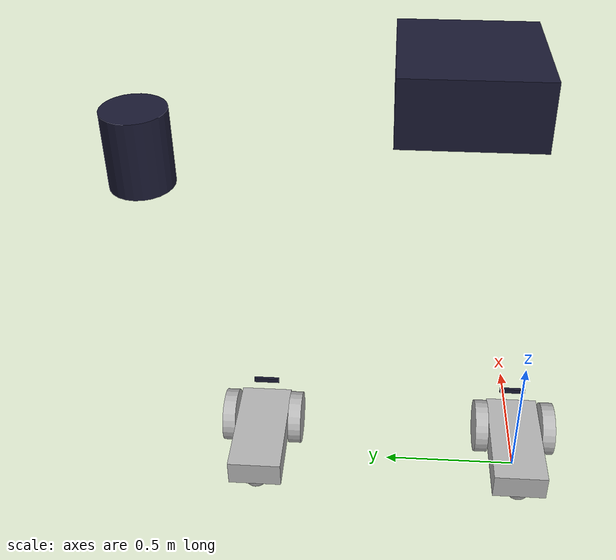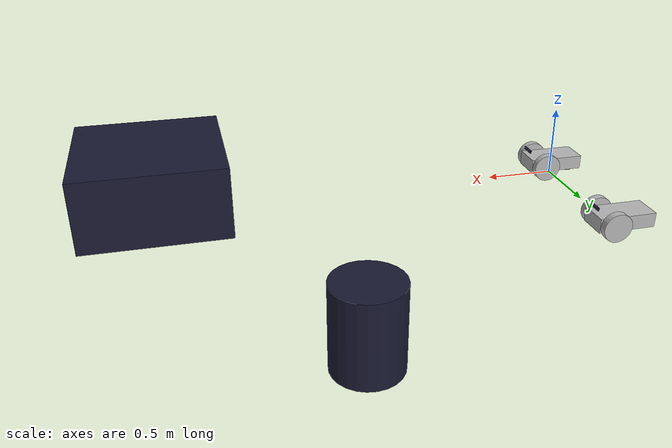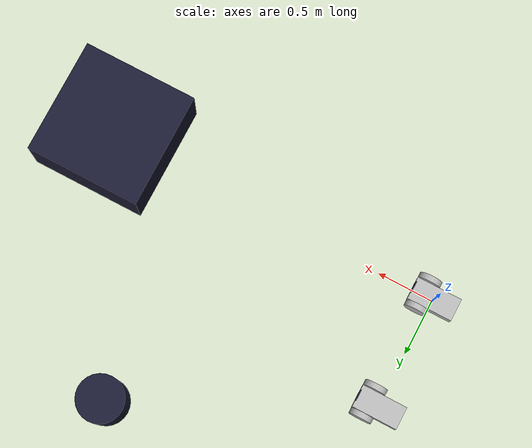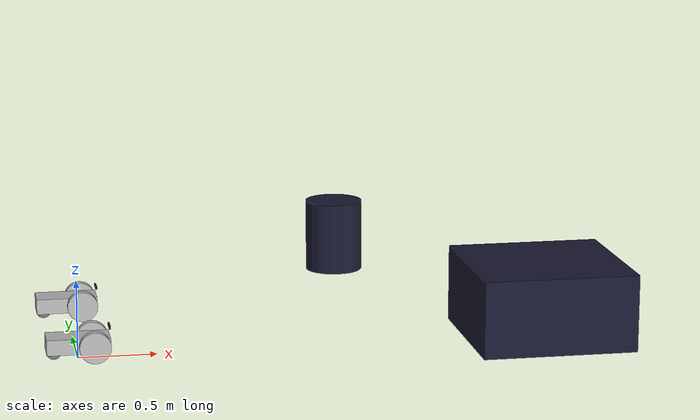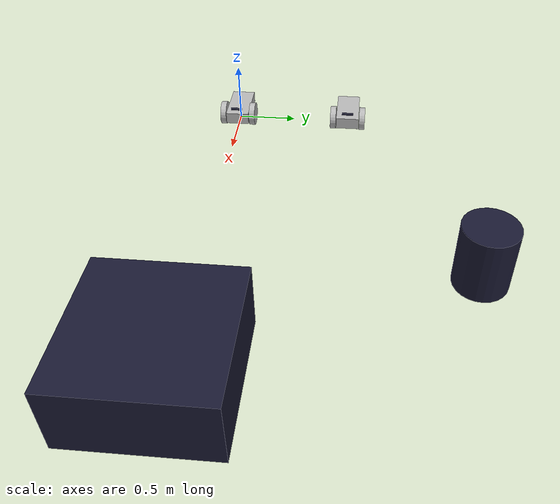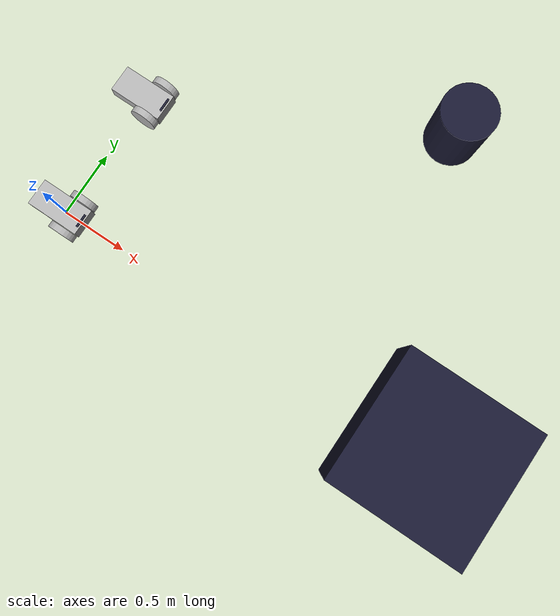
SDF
<?xml version="1.0" ?>
<sdf version='1.4'>
  <world name="model_world">
    <!-- Ground Plane -->
    <include>
      <uri>model://sun</uri>
    </include>

    <model name="gplane">
      <pose>0.000000 0.000000 0.000000 0 0 0</pose>
      <link name="plane">
        <pose>0.000000 0.000000 0.000000 0.000000 -0.000000 0.000000</pose>
        <collision name="plane">
          <pose>0.000000 0.000000 0.000000 0.000000 -0.000000 0.000000</pose>
          <geometry>
            <plane>
              <normal>0.000000 0.000000 1.00000</normal>
            </plane>
          </geometry>
          <surface>

          <friction>
              <ode>
                <mu>100.000000</mu>
                <mu2>100.000000</mu2>
              </ode>
            </friction>
          </surface>

        </collision>
      </link>
    </model>

    <model name="my_robot_2">
      <static>false</static>
      <pose>0 1 0 0 0 0</pose>
      <link name='chassis'>
        <pose>0 0 .1 0 0 0</pose>
        <collision name='collision'>
          <geometry>
            <box>
              <size>.4 .2 .1</size>
            </box>
          </geometry>
        </collision>

        <visual name='visual'>
          <geometry>
            <box>
              <size>.4 .2 .1</size>
            </box>
          </geometry>
        </visual>

        <collision name='caster_collision'>
            <pose>-0.15 0 -0.05 0 0 0</pose>
            <geometry>
                <sphere>
                <radius>.05</radius>
              </sphere>
            </geometry>

            <surface>
              <friction>
                <ode>
                  <mu>0</mu>
                  <mu2>0</mu2>
                  <slip1>1.0</slip1>
                  <slip2>1.0</slip2>
                </ode>
              </friction>
            </surface>
          </collision>

          <visual name='caster_visual'>
            <pose>-0.15 0 -0.05 0 0 0</pose>
            <geometry>
              <sphere>
                <radius>.05</radius>
              </sphere>
            </geometry>
          </visual>
      </link>

      <link name="left_wheel">
        <pose>0.1 0.13 0.1 0 1.5707 1.5707</pose>
        <collision name="collision">
          <geometry>
            <cylinder>
              <radius>.1</radius>
              <length>.05</length>
            </cylinder>
          </geometry>
        </collision>
        <visual name="visual">
          <geometry>
            <cylinder>
              <radius>.1</radius>
              <length>.05</length>
            </cylinder>
          </geometry>
        </visual>
      </link>

      <link name="right_wheel">
        <pose>0.1 -0.13 0.1 0 1.5707 1.5707</pose>
        <collision name="collision">
          <geometry>
            <cylinder>
              <radius>.1</radius>
              <length>.05</length>
            </cylinder>
          </geometry>
        </collision>
        <visual name="visual">
          <geometry>
            <cylinder>
              <radius>.1</radius>
              <length>.05</length>
            </cylinder>
          </geometry>
        </visual>
      </link>

      <link name="camera_link">
        <gravity>0</gravity>
        <pose>0.2 0 0.2 0 0 0</pose>

        <visual name="camera_link_visual">
          <pose>0 0 0 0 0 0</pose>
          <geometry>
            <box>
              <size>0.01 0.1 0.02</size>
            </box>
          </geometry>
          <material>
            <ambient>0.1 0.1 0.1 1</ambient>
            <diffuse>0.1 0.1 0.2 1</diffuse>
            <specular>0 0 0 0</specular>
            <emissive>0 0 0 1</emissive>
          </material>
        </visual>
        <sensor type="ray" name="head_hokuyo_sensor">
          <pose>0 0 0 0 0 0</pose>
          <visualize>1</visualize>
          <update_rate>20</update_rate>
          <ray>
            <scan>
              <horizontal>
                <samples>540</samples>
                <resolution>1</resolution>
                <min_angle>-1.570796</min_angle>
                <max_angle>1.570796</max_angle>
              </horizontal>
            </scan>
            <range>
              <min>0.10</min>
              <max>10.0</max>
              <resolution>0.01</resolution>
            </range>
            <noise>
              <type>gaussian</type>
              <mean>0.0</mean>
              <stddev>0.01</stddev>
            </noise>
          </ray>
          <plugin name="gazebo_ros_head_hokuyo_controller" filename="libgazebo_ros_laser.so">
            <topicName>/scan</topicName>
            <frameName>camera_link</frameName>
          </plugin>
        </sensor>
      </link>

      <joint name="camera_joint" type="revolute">
        <axis>
          <xyz>0 0 0</xyz>
        </axis>
        <parent>chassis</parent>
        <child>camera_link</child>
      </joint>

      <joint type="revolute" name="left_wheel_hinge">
        <pose>0 0 -0.03 0 0 0</pose>
        <child>left_wheel</child>
        <parent>chassis</parent>
        <axis>
          <xyz>0 1 0</xyz>
        </axis>
      </joint>

      <joint type="revolute" name="right_wheel_hinge">
        <pose>0 0 0.03 0 0 0</pose>
        <child>right_wheel</child>
        <parent>chassis</parent>
        <axis>
          <xyz>0 1 0</xyz>
        </axis>
      </joint>

      <plugin filename="libgazebo_ros_diff_drive.so" name="differential_drive_controller">
        <alwaysOn>true</alwaysOn>
        <updateRate>20</updateRate>
        <leftJoint>left_wheel_hinge</leftJoint>
        <rightJoint>right_wheel_hinge</rightJoint>
        <wheelSeparation>0.4</wheelSeparation>
        <wheelDiameter>0.2</wheelDiameter>
        <torque>0.1</torque>
        <commandTopic>cmd_vel</commandTopic>
        <odometryTopic>odom</odometryTopic>
        <odometryFrame>odom</odometryFrame>
        <robotBaseFrame>link_chassis</robotBaseFrame>
      </plugin>
    </model>

    <model name="my_robot">
      <static>false</static>
      <link name='chassis'>
        <pose>0 0 .1 0 0 0</pose>
        <collision name='collision'>
          <geometry>
            <box>
              <size>.4 .2 .1</size>
            </box>
          </geometry>
        </collision>

        <visual name='visual'>
          <geometry>
            <box>
              <size>.4 .2 .1</size>
            </box>
          </geometry>
        </visual>

        <collision name='caster_collision'>
            <pose>-0.15 0 -0.05 0 0 0</pose>
            <geometry>
                <sphere>
                <radius>.05</radius>
              </sphere>
            </geometry>

            <surface>
              <friction>
                <ode>
                  <mu>0</mu>
                  <mu2>0</mu2>
                  <slip1>1.0</slip1>
                  <slip2>1.0</slip2>
                </ode>
              </friction>
            </surface>
          </collision>

          <visual name='caster_visual'>
            <pose>-0.15 0 -0.05 0 0 0</pose>
            <geometry>
              <sphere>
                <radius>.05</radius>
              </sphere>
            </geometry>
          </visual>
      </link>

      <link name="left_wheel">
        <pose>0.1 0.13 0.1 0 1.5707 1.5707</pose>
        <collision name="collision">
          <geometry>
            <cylinder>
              <radius>.1</radius>
              <length>.05</length>
            </cylinder>
          </geometry>
        </collision>
        <visual name="visual">
          <geometry>
            <cylinder>
              <radius>.1</radius>
              <length>.05</length>
            </cylinder>
          </geometry>
        </visual>
      </link>

      <link name="right_wheel">
        <pose>0.1 -0.13 0.1 0 1.5707 1.5707</pose>
        <collision name="collision">
          <geometry>
            <cylinder>
              <radius>.1</radius>
              <length>.05</length>
            </cylinder>
          </geometry>
        </collision>
        <visual name="visual">
          <geometry>
            <cylinder>
              <radius>.1</radius>
              <length>.05</length>
            </cylinder>
          </geometry>
        </visual>
      </link>

      <link name="camera_link">
        <gravity>0</gravity>
        <pose>0.2 0 0.2 0 0 0</pose>

        <visual name="camera_link_visual">
          <pose>0 0 0 0 0 0</pose>
          <geometry>
            <box>
              <size>0.01 0.1 0.02</size>
            </box>
          </geometry>
          <material>
            <ambient>0.1 0.1 0.1 1</ambient>
            <diffuse>0.1 0.1 0.2 1</diffuse>
            <specular>0 0 0 0</specular>
            <emissive>0 0 0 1</emissive>
          </material>
        </visual>
        <sensor type="ray" name="head_hokuyo_sensor">
          <pose>0 0 0 0 0 0</pose>
          <visualize>1</visualize>
          <update_rate>20</update_rate>
          <ray>
            <scan>
              <horizontal>
                <samples>540</samples>
                <resolution>1</resolution>
                <min_angle>-1.570796</min_angle>
                <max_angle>1.570796</max_angle>
              </horizontal>
            </scan>
            <range>
              <min>0.10</min>
              <max>10.0</max>
              <resolution>0.01</resolution>
            </range>
            <noise>
              <type>gaussian</type>
              <mean>0.0</mean>
              <stddev>0.01</stddev>
            </noise>
          </ray>
          <plugin name="gazebo_ros_head_hokuyo_controller" filename="libgazebo_ros_laser.so">
            <topicName>/scan_2</topicName>
            <frameName>camera_link</frameName>
          </plugin>
        </sensor>
      </link>

      <joint name="camera_joint" type="revolute">
        <axis>
          <xyz>0 0 0</xyz>
        </axis>
        <parent>chassis</parent>
        <child>camera_link</child>
      </joint>

      <joint type="revolute" name="left_wheel_hinge">
        <pose>0 0 -0.03 0 0 0</pose>
        <child>left_wheel</child>
        <parent>chassis</parent>
        <axis>
          <xyz>0 1 0</xyz>
        </axis>
      </joint>

      <joint type="revolute" name="right_wheel_hinge">
        <pose>0 0 0.03 0 0 0</pose>
        <child>right_wheel</child>
        <parent>chassis</parent>
        <axis>
          <xyz>0 1 0</xyz>
        </axis>
      </joint>
    </model>

    <model name='box'>
      <pose>3 0 0.25 0 0 0</pose>
      <static>true</static>
      <link name="box">
        <self_collide>0</self_collide>
        <pose>0 0 0 0 0 0</pose>
        <collision name="box_col">
          <pose>0 0 0 0 0 0</pose>
          <geometry>
            <box>
              <size>1 1 0.50</size>
            </box>
          </geometry>
          <surface>
            <contact>
              <collide_bitmask>1</collide_bitmask>
            </contact>
          </surface>
        </collision>
        <visual name="box_visual">
          <pose>0 0 0 0 0 0</pose>
          <geometry>
            <box>
              <size>1 1 0.50</size>
            </box>
          </geometry>
          <material>
            <ambient>0.1 0.1 0.1 1</ambient>
            <diffuse>0.1 0.1 0.2 1</diffuse>
            <specular>0 0 0 0</specular>
            <emissive>0 0 0 1</emissive>
          </material>
        </visual>
      </link>
    </model>

    <model name='cylinder'>
      <pose>2 2 0.25 0 0 0</pose>
      <static>true</static>
      <link name="cylinder">
        <self_collide>0</self_collide>
        <pose>0 0 0 0 0 0</pose>
        <collision name="cylinder_col">
          <pose>0 0 0 0 0 0</pose>
          <geometry>
            <cylinder>
             <radius>0.2</radius>
             <length>0.5</length>
            </cylinder>
          </geometry>
          <surface>
            <contact>
              <collide_bitmask>1</collide_bitmask>
            </contact>
          </surface>
        </collision>
        <visual name="cylinder_visual">
          <pose>0 0 0 0 0 0</pose>
          <geometry>
            <cylinder>
             <radius>0.2</radius>
             <length>0.5</length>
            </cylinder>
          </geometry>
          <material>
            <ambient>0.1 0.1 0.1 1</ambient>
            <diffuse>0.1 0.1 0.2 1</diffuse>
            <specular>0 0 0 0</specular>
            <emissive>0 0 0 1</emissive>
          </material>
        </visual>
      </link>
    </model>
  </world>
</sdf>
